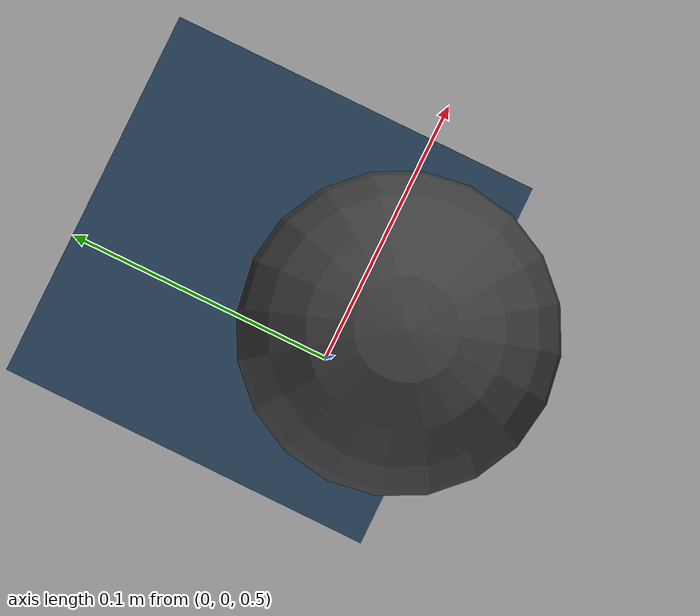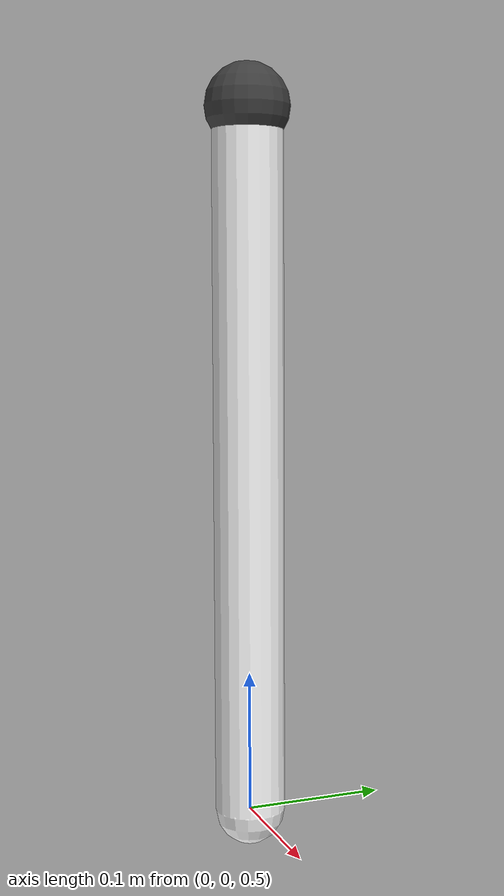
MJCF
<mujoco model="pendulum">

    <option integrator="implicit"/>

    <asset>
        <texture name="grid" type="2d" builtin="checker" width="512" height="512" rgb1=".1 .2 .3" rgb2=".2 .3 .4"/>
		<material name="grid" texture="grid" texrepeat="1 1" texuniform="true" reflectance=".2"/>
    </asset>

    <worldbody>
        <geom type="plane" size="0 0 0.1" material="grid"/>
        <light directional="false" pos="0 0 20" dir="0 0 -1" diffuse="1 1 1" active="true"/>

        <geom type="sphere" size="0.03" pos="0.00 0.00 1.00" rgba="0.25 0.25 0.25 1.00"/>

        <body>
            <geom type="capsule" size="0.025" fromto="0.00 0.00 1.00 0.00 0.00 0.50" rgba="1.0 1.0 1.0 1.0" mass="1.0"/>
            <joint name="pin" type="hinge" pos="0.00 0.00 1.00" axis="1 0 0" damping="0.25" frictionloss="0.50" stiffness="2.0"/>
        </body>
    </worldbody>

    <actuator>
        <motor name="u" joint="pin"/>
    </actuator>

</mujoco>
